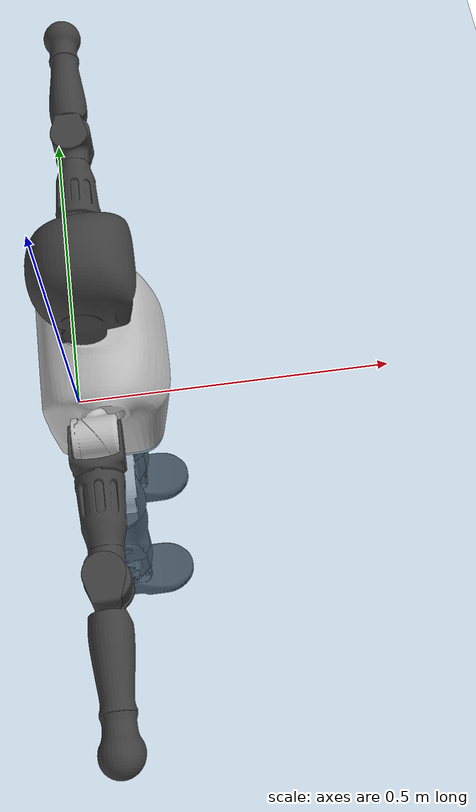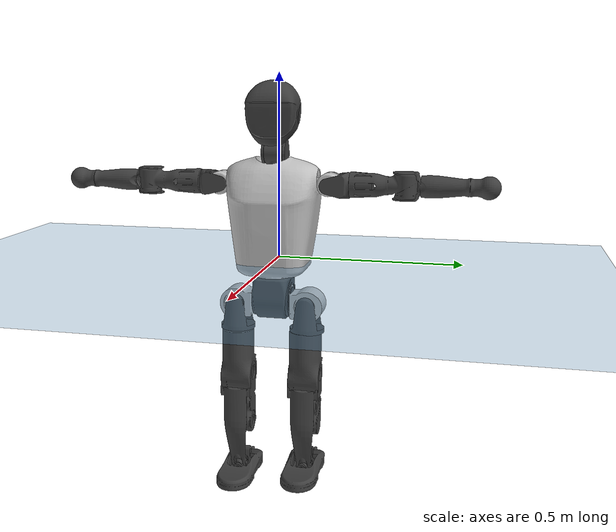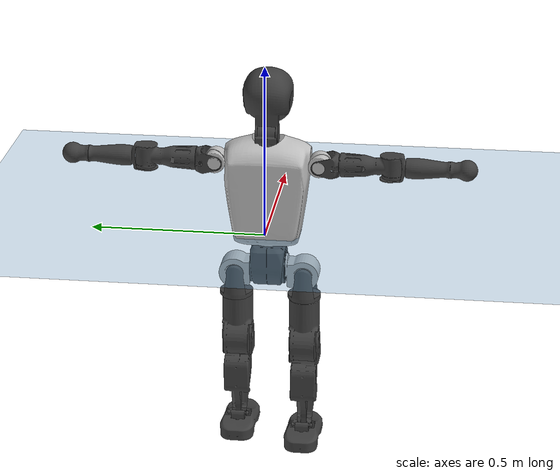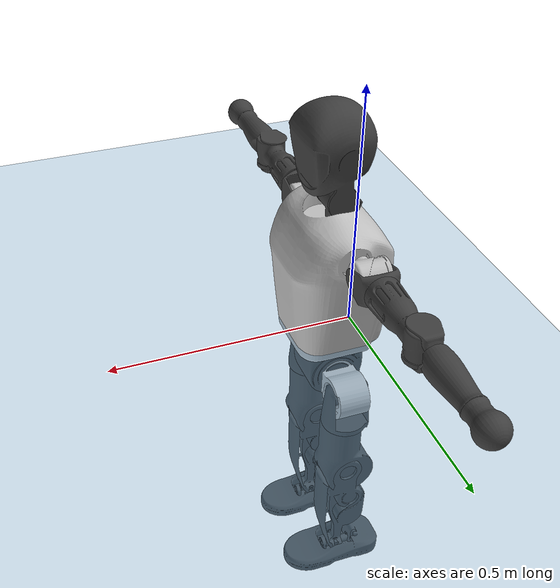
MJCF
<mujoco model="T1">
  <compiler angle="radian" assetdir="assets" balanceinertia="true" inertiafromgeom="false"/>

  <option timestep="0.005" density="1.2" viscosity="2e-05"/>

  <size nkey="1"/>

  <visual>
    <quality shadowsize="8192"/>
    <map shadowclip="0.5"/>
  </visual>

  <default>
    <default class="/">
      <joint armature="0.01" damping="0.01" frictionloss="0.1"/>
      <geom contype="0" conaffinity="0" group="1" solref="-1000 -80"/>
      <site size="0.01 0.005 0.005" group="5"/>
      <general forcelimited="true" biastype="affine" gainprm="25" biasprm="0 -25 -0.6"/>
      <default class="t1">
        <geom rgba="0.25 0.25 0.25 1"/>
        <default class="visual">
          <geom type="mesh" group="2"/>
        </default>
        <default class="collision">
          <geom group="3"/>
        </default>
        <default class="foot">
          <geom size="0.1115 0.05 0.015" type="box" condim="6" group="4" priority="1" solimp="0.015 1 0.015"/>
        </default>
        <default class="reward_collision_sphere">
          <geom group="5" rgba="1 0 0 1"/>
        </default>
      </default>
    </default>
  </default>

  <asset>
    <texture type="skybox" colorspace="auto" name="//unnamed_texture_0" builtin="gradient" rgb1="0.95 0.95 0.95" rgb2="0.95 0.95 0.95" width="100" height="600"/>
    <texture type="2d" colorspace="auto" name="texplane" builtin="checker" rgb1="0.345 0.575 0.748" rgb2="0.345 0.575 0.748" markrgb="1 1 1" width="512" height="512"/>
    <material name="MatPlane" class="/" texture="texplane" texuniform="true" texrepeat="2 2" specular="0.9"/>
    <mesh name="Trunk" class="/" file="Trunk.stl"/>
    <mesh name="H1" class="/" file="H1.stl"/>
    <mesh name="H2" class="/" file="H2.stl"/>
    <mesh name="AL1" class="/" file="AL1.stl"/>
    <mesh name="AL2" class="/" file="AL2.stl"/>
    <mesh name="AL3" class="/" file="AL3.stl"/>
    <mesh name="left_hand_link" class="/" file="left_hand_link.stl"/>
    <mesh name="AR1" class="/" file="AR1.stl"/>
    <mesh name="AR2" class="/" file="AR2.stl"/>
    <mesh name="AR3" class="/" file="AR3.stl"/>
    <mesh name="right_hand_link" class="/" file="right_hand_link.stl"/>
    <mesh name="Waist" class="/" file="Waist.stl"/>
    <mesh name="Hip_Pitch_Left" class="/" file="Hip_Pitch_Left.stl"/>
    <mesh name="Hip_Roll_Left" class="/" file="Hip_Roll_Left.stl"/>
    <mesh name="Hip_Yaw_Left" class="/" file="Hip_Yaw_Left.stl"/>
    <mesh name="Shank_Left" class="/" file="Shank_Left.stl"/>
    <mesh name="Ankle_Cross_Left" class="/" file="Ankle_Cross_Left.stl"/>
    <mesh name="left_foot_link" class="/" file="left_foot_link.stl"/>
    <mesh name="Hip_Pitch_Right" class="/" file="Hip_Pitch_Right.stl"/>
    <mesh name="Hip_Roll_Right" class="/" file="Hip_Roll_Right.stl"/>
    <mesh name="Hip_Yaw_Right" class="/" file="Hip_Yaw_Right.stl"/>
    <mesh name="Shank_Right" class="/" file="Shank_Right.stl"/>
    <mesh name="Ankle_Cross_Right" class="/" file="Ankle_Cross_Right.stl"/>
    <mesh name="right_foot_link" class="/" file="right_foot_link.stl"/>
  </asset>

  <worldbody>
    <geom name="floor" class="/" size="100 100 0.125" type="plane" group="0" material="MatPlane"/>
    <light name="toplight_shadow" class="/" pos="0 0 5" dir="0.0990148 0.0990148 -0.990148" type="directional" ambient="0.04 0.04 0.04" diffuse="0.55 0.55 0.55" specular="0.12 0.12 0.12"/>
    <light name="toplight_fill" class="/" pos="0 0 5" dir="0.0990148 0.0990148 -0.990148" type="directional" castshadow="false" ambient="0.04 0.04 0.04" diffuse="0.3 0.3 0.3" specular="0.08 0.08 0.08"/>
    <body name="trunk" childclass="t1" pos="-0.00190203 -0.00242171 0.002791" quat="0.999999 0.000201884 -0.000569693 0.000964154">
      <inertial pos="0.0365407 5.10975e-05 0.101813" quat="0.999946 0.00162593 -0.0101552 0.00178754" mass="7.34521" diaginertia="0.0134695 0.0560083 0.0448687"/>
      <joint name="//unnamed_joint_0" type="free" armature="0" damping="0" frictionloss="0"/>
      <geom name="//unnamed_geom_1" class="visual" rgba="0.76 0.76 0.76 1" mesh="Trunk"/>
      <geom name="//unnamed_geom_2" class="collision" size="0.0642317 0.0856423 0.128463" pos="0.0405911 0 0.114024" type="box"/>
      <geom name="//unnamed_geom_3" class="reward_collision_sphere" size="0.0984886" pos="0.0405911 0 0.0950201"/>
      <geom name="//unnamed_geom_4" class="reward_collision_sphere" size="0.0128463" pos="0.0405911 0.0801166 0"/>
      <geom name="//unnamed_geom_5" class="reward_collision_sphere" size="0.0128463" pos="0.0405911 -0.0801166 0"/>
      <geom name="//unnamed_geom_6" class="reward_collision_sphere" size="0.0128463" pos="0.0405911 0.100853 0.171036"/>
      <geom name="//unnamed_geom_7" class="reward_collision_sphere" size="0.0128463" pos="0.0405911 -0.100853 0.171036"/>
      <site name="imu" pos="0.0139551 -0.00431137 0.00338301" size="0.00856423"/>
      <camera name="track" pos="0 -1.8851 0" quat="0.707107 0.707107 0 0" mode="trackcom"/>
      <camera name="ego_camera" pos="0.0825353 0 0.399084" quat="-0.5 -0.5 0.5 0.5"/>
      <body name="H1" pos="0.0440418 0.0021138 0.227792" quat="1 -3.84431e-05 -7.92215e-05 4.45967e-05">
        <inertial pos="-0.00365909 0.000327497 0.0573299" quat="0.763206 -0.00824178 0.00155479 0.6461" mass="0.270758" diaginertia="3.27432e-05 0.000166456 0.000112047"/>
        <joint name="AAHead_yaw" pos="0 0 0" axis="1.12834e-06 3.86419e-05 1" stiffness="0.0025109" range="-1.61262 1.51695" armature="0.00733342" damping="0.00877023" frictionloss="0.0899774"/>
        <geom name="//unnamed_geom_8" class="visual" mesh="H1"/>
        <body name="H2" pos="0.000696156 -0.000149713 0.0613723" quat="1 -0.00024005 7.93332e-05 3.66494e-05">
          <inertial pos="0.0046876 0.00158132 0.0939746" quat="0.988131 0.110376 -0.0800458 -0.0707527" mass="0.389149" diaginertia="0.000271045 0.00142218 0.00132562"/>
          <joint name="Head_pitch" pos="0 0 0" axis="0.00119103 -0.999995 0.00294954" range="-1.19915 0.329162" armature="0.0076941" damping="0.0110076" frictionloss="0.0825737"/>
          <geom name="//unnamed_geom_9" class="visual" mesh="H2"/>
          <geom name="//unnamed_geom_10" class="collision" size="0.0685138" pos="0.00676519 0 0.104522"/>
          <geom name="//unnamed_geom_11" class="reward_collision_sphere" size="0.077078" pos="0.0135304 0 0.0950201"/>
        </body>
      </body>
      <body name="AL1" pos="0.0400763 0.101546 0.207232" quat="1 -0.000156381 0.000422766 0.000153004">
        <inertial pos="-0.00345649 0.0419049 -1.12516e-05" quat="0.508421 0.498025 -0.500059 0.493377" mass="0.335743" diaginertia="0.000194717 0.000997494 0.000235002"/>
        <joint name="Left_Shoulder_Pitch" pos="0 0 0" axis="0.0115641 0.99988 -0.0102912" stiffness="0.00389571" range="-3.29522 1.26239" armature="0.00877066" damping="0.00986601" frictionloss="0.0880702"/>
        <geom name="//unnamed_geom_12" class="visual" rgba="0.76 0.76 0.76 1" mesh="AL1"/>
        <body name="AL2" pos="0.000874079 0.0453872 -0.00234699" quat="1 -1.00399e-05 1.53339e-06 -1.73277e-05">
          <inertial pos="0.00145821 0.0328854 0.000271273" quat="0.487731 0.512457 -0.488145 0.511098" mass="0.0986087" diaginertia="5.58188e-05 0.000254207 0.00013633"/>
          <joint name="Left_Shoulder_Roll" pos="0 0 0" axis="-0.999993 -0.000104134 0.00365068" range="-1.61851 1.79558" armature="0.00874919" damping="0.0105266" frictionloss="0.0897167"/>
          <geom name="//unnamed_geom_13" class="visual" mesh="AL2"/>
          <body name="AL3" pos="0.00315645 0.0566941 0.00303769" quat="0.999999 0.000921156 -0.00011107 -0.00111325">
            <inertial pos="-0.00190779 0.0793889 -0.000346753" quat="0.704816 0.70939 -0.000728261 0.000527229" mass="0.665942" diaginertia="0.00188833 0.00931562 0.000476676"/>
            <joint name="Left_Elbow_Pitch" pos="0 0 0" axis="0.00449527 -0.99999 2.24331e-05" range="-2.28065 2.27446" armature="0.00749036" damping="0.0155574" frictionloss="0.0868916"/>
            <geom name="//unnamed_geom_14" class="visual" mesh="AL3"/>
            <geom name="//unnamed_geom_15" class="collision" size="0.0256927 0.0642317" pos="0 0.0471274 0" quat="0.707105 0.707108 0 0" type="cylinder"/>
            <geom name="//unnamed_geom_16" class="reward_collision_sphere" size="0.0308312"/>
            <body name="left_hand_link" pos="-0.00192733 0.139528 -0.000637617" quat="0.999999 0.000410085 0.00097534 5.96913e-05">
              <inertial pos="0.000108026 0.100668 0.0033448" quat="0.704603 0.709492 -0.0123311 0.00170831" mass="0.19822" diaginertia="0.00116239 0.00595799 0.00015746"/>
              <joint name="Left_Elbow_Yaw" pos="0 0 0" axis="0.000291506 4.75212e-05 1" stiffness="0.0107256" range="-2.43124 -0.0343832" armature="0.00901731" damping="0.00971915" frictionloss="0.0842593"/>
              <geom name="//unnamed_geom_17" class="visual" mesh="left_hand_link"/>
              <geom name="//unnamed_geom_18" class="collision" size="0.0256927 0.074937" pos="0 0.122531 0" quat="0.707105 0.707108 0 0" type="cylinder"/>
              <geom name="//unnamed_geom_19" class="reward_collision_sphere" size="0.0428211"/>
              <geom name="//unnamed_geom_20" class="reward_collision_sphere" size="0.0299748" pos="0 0.10368 0"/>
              <geom name="//unnamed_geom_21" class="reward_collision_sphere" size="0.0299748" pos="0 0.202648 0"/>
            </body>
          </body>
        </body>
      </body>
      <body name="AR1" pos="0.0411002 -0.101079 0.205793" quat="1 -5.98835e-07 0.000390403 2.5061e-06">
        <inertial pos="-0.00148714 -0.0449534 0.00159763" quat="0.501941 0.495158 -0.506579 0.496237" mass="0.320955" diaginertia="0.000187828 0.000908757 0.00021865"/>
        <joint name="Right_Shoulder_Pitch" pos="0 0 0" axis="0.00806554 -0.999965 -0.00209866" stiffness="0.00847783" range="-1.17144 3.33094" armature="0.00922227" damping="0.00687815" frictionloss="0.0972609"/>
        <geom name="//unnamed_geom_22" class="visual" rgba="0.76 0.76 0.76 1" mesh="AR1"/>
        <body name="AR2" pos="-0.000625726 -0.046046 -0.00124687" quat="0.999999 -0.00078672 0.000207553 0.000940015">
          <inertial pos="-0.000245596 -0.0356739 -0.00228872" quat="0.506554 0.496486 -0.504749 0.49207" mass="0.101393" diaginertia="5.78744e-05 0.000262565 0.000136706"/>
          <joint name="Right_Shoulder_Roll" pos="0 0 0" axis="-0.999793 -0.0202714 0.00195233" range="-1.73486 1.58555" armature="0.00776786" damping="0.00569515" frictionloss="0.088821"/>
          <geom name="//unnamed_geom_23" class="visual" mesh="AR2"/>
          <body name="AR3" pos="0.000490649 -0.0595876 0.00181155" quat="0.999999 0.000996967 0.000503895 0.000626874">
            <inertial pos="0.000930067 -0.0816159 0.00237402" quat="0.70751 0.706699 0.00141288 -0.00206465" mass="0.617888" diaginertia="0.00171691 0.00914952 0.000454005"/>
            <joint name="Right_Elbow_Pitch" pos="0 0 0" axis="0.000383396 1 -0.000325489" range="-2.27033 2.26389" armature="0.00855053" damping="0.0125913" frictionloss="0.0900249"/>
            <geom name="//unnamed_geom_24" class="visual" mesh="AR3"/>
            <geom name="//unnamed_geom_25" class="collision" size="0.0256927 0.0642317" pos="0 -0.0471274 0" quat="0.707105 0.707108 0 0" type="cylinder"/>
            <geom name="//unnamed_geom_26" class="reward_collision_sphere" size="0.0308312"/>
            <body name="right_hand_link" pos="-0.0033442 -0.139424 -0.000793645" quat="1 6.9088e-05 -4.44574e-05 8.53103e-06">
              <inertial pos="-0.000245275 -0.10207 0.00107475" quat="0.706524 0.707688 -0.000740289 0.000889777" mass="0.2026" diaginertia="0.00117628 0.00615603 0.000164968"/>
              <joint name="Right_Elbow_Yaw" pos="0 0 0" axis="0.00570227 0.00139313 0.999983" stiffness="0.00267815" range="-0.0212328 2.44325" armature="0.00754158" damping="0.00771358" frictionloss="0.097178"/>
              <geom name="//unnamed_geom_27" class="visual" mesh="right_hand_link"/>
              <geom name="//unnamed_geom_28" class="collision" size="0.0256927 0.074937" pos="0 -0.122531 0" quat="0.707105 0.707108 0 0" type="cylinder"/>
              <geom name="//unnamed_geom_29" class="reward_collision_sphere" size="0.0428211"/>
              <geom name="//unnamed_geom_30" class="reward_collision_sphere" size="0.0299748" pos="0 -0.10368 0"/>
              <geom name="//unnamed_geom_31" class="reward_collision_sphere" size="0.0299748" pos="0 -0.202648 0"/>
            </body>
          </body>
        </body>
      </body>
      <body name="Waist" pos="0.0416993 -0.00349723 -0.107734" quat="0.999999 -0.000108036 0.000320298 -0.0010667">
        <inertial pos="-0.000588703 0.00226843 0.00418624" quat="0.98396 0.00834358 -0.178143 0.00416754" mass="1.55853" diaginertia="0.000754718 0.00384078 0.00361077"/>
        <joint name="Waist" pos="0 0 0" axis="-0.00814273 -0.010852 0.999908" stiffness="0.00862184" range="-1.57179 1.5772" armature="0.00863068" damping="0.0140022" frictionloss="0.0877531"/>
        <geom name="//unnamed_geom_32" class="visual" mesh="Waist"/>
        <body name="Hip_Pitch_Left" pos="-0.00129826 0.0967429 0.00117164" quat="1 -0.000252572 -0.000293738 0.000203289">
          <inertial pos="0.00258568 -0.00827575 -0.0172238" quat="0.973817 0.22614 0.0229842 -0.00367493" mass="0.654551" diaginertia="0.000257382 0.00116095 0.000992212"/>
          <joint name="Left_Hip_Pitch" pos="0 0 0" axis="-0.00547952 0.999939 0.00955231" stiffness="0.0121433" range="-1.76211 1.57305" armature="0.009712" damping="0.00983583" frictionloss="0.0820909"/>
          <geom name="//unnamed_geom_33" class="visual" rgba="0.76 0.76 0.76 1" mesh="Hip_Pitch_Left"/>
          <body name="Hip_Roll_Left" pos="-0.000435806 -0.00291275 -0.0180552" quat="1 -7.76331e-05 -0.000169899 0.000105854">
            <inertial pos="0.00100203 -0.00136317 -0.0533772" quat="0.706815 -0.00607118 -0.00680069 0.70734" mass="0.231745" diaginertia="0.000231551 0.0010676 0.000390406"/>
            <joint name="Left_Hip_Roll" pos="0 0 0" axis="-0.999943 -0.00865401 0.0063127" range="-1.56522 0.252829" armature="0.00864405" damping="0.0071327" frictionloss="0.0973976"/>
            <geom name="//unnamed_geom_34" class="visual" mesh="Hip_Roll_Left"/>
            <geom name="//unnamed_geom_35" class="reward_collision_sphere" size="0.0471032"/>
            <body name="Hip_Yaw_Left" pos="0.00382799 -0.00326205 -0.0750309" quat="0.999999 -0.000476534 0.000883639 -0.000944964">
              <inertial pos="-0.00486146 0.000154629 -0.0877352" quat="0.701545 -0.0325429 -0.0326855 0.711131" mass="1.35692" diaginertia="0.00353208 0.0185928 0.00197136"/>
              <joint name="Left_Hip_Yaw" pos="0 0 0" axis="0.000173099 0.00345668 -0.999994" range="-1.03163 1.02216" armature="0.00829515" damping="0.0125156" frictionloss="0.0879066"/>
              <geom name="//unnamed_geom_36" class="visual" mesh="Hip_Yaw_Left"/>
              <geom name="//unnamed_geom_37" class="collision" size="0.0428211 0.0685138" type="cylinder"/>
              <body name="Shank_Left" pos="-0.00612498 -0.00101982 -0.12453" quat="1 8.67991e-06 -0.00021682 -0.000272268">
                <inertial pos="-0.00675086 0.000498506 -0.118807" quat="0.996701 0.00819631 -0.0236713 0.0772013" mass="1.08729" diaginertia="0.00509639 0.0252469 0.00139272"/>
                <joint name="Left_Knee_Pitch" pos="0 0 0" axis="0.00689979 0.999976 -0.0011264" stiffness="0.000661283" range="-0.00258636 2.28367" armature="0.00992978" damping="0" frictionloss="0.0894872"/>
                <geom name="//unnamed_geom_38" class="visual" mesh="Shank_Left"/>
                <geom name="//unnamed_geom_39" class="collision" size="0.0428211 0.0642317" pos="0 0 -0.114024" type="cylinder"/>
                <geom name="//unnamed_geom_40" class="reward_collision_sphere" size="0.0556675"/>
                <body name="Ankle_Cross_Left" pos="0.00226024 -0.000677081 -0.266674" quat="0.999999 -8.7894e-05 -0.00109698 -0.00066004">
                  <inertial pos="-0.00347219 -0.000237177 -0.00498291" quat="0.444525 0.550174 0.549355 0.444876" mass="0.0456406" diaginertia="3.9947e-06 1.91931e-05 9.05531e-06"/>
                  <joint name="Left_Ankle_Pitch" pos="0 0 0" axis="-0.0013807 0.999998 0.00158727" range="-0.871388 0.354479" armature="0.00910497" damping="0.0204144" frictionloss="0.0820497"/>
                  <geom name="//unnamed_geom_41" class="visual" mesh="Ankle_Cross_Left"/>
                  <body name="left_foot_link" pos="-0.00242921 -0.00318208 -0.00924405" quat="1 0.000354189 -9.7091e-05 -0.000318004">
                    <inertial pos="-0.00294735 -0.00242678 -0.00793239" quat="-0.00891838 0.616589 0.00208026 0.787232" mass="0.435732" diaginertia="0.000377131 0.00175496 0.00174912"/>
                    <joint name="Left_Ankle_Roll" pos="0 0 0" axis="-0.999982 -0.00589698 -0.00077839" range="-0.419525 0.496886" armature="0.008722" damping="0" frictionloss="0.0841835"/>
                    <geom name="//unnamed_geom_42" class="visual" mesh="left_foot_link"/>
                    <geom name="left_foot" class="foot" size="0.108046 0.0390635 0.0135612" pos="0.00676519 0 -0.014253"/>
                    <geom name="//unnamed_geom_44" class="reward_collision_sphere" size="0.044534" pos="0.00676519 0 -0.014253"/>
                    <geom name="//unnamed_geom_45" class="reward_collision_sphere" size="0.0256927" pos="0.0642693 -0.0216786 -0.014253"/>
                    <geom name="//unnamed_geom_46" class="reward_collision_sphere" size="0.0256927" pos="-0.0473563 -0.0216786 -0.014253"/>
                    <site name="left_foot" class="foot" pos="0.00676519 0 -0.014253" size="0.00856423"/>
                  </body>
                </body>
              </body>
            </body>
          </body>
        </body>
        <body name="Hip_Pitch_Right" pos="-0.00253977 -0.102619 0.000656" quat="1 -0.000435691 8.28939e-06 -0.000628407">
          <inertial pos="-0.00154073 0.00482282 -0.0182636" quat="0.973846 -0.226889 0.0120053 -0.00128985" mass="0.64136" diaginertia="0.000265622 0.00112843 0.000973645"/>
          <joint name="Right_Hip_Pitch" pos="0 0 0" axis="-0.000146636 -1 -0.000150375" range="-1.57852 1.74062" armature="0.00776094" damping="0" frictionloss="0.0941106"/>
          <geom name="//unnamed_geom_47" class="visual" rgba="0.76 0.76 0.76 1" mesh="Hip_Pitch_Right"/>
          <body name="Hip_Roll_Right" pos="-0.00320648 -0.00166399 -0.0185731" quat="0.999999 0.00131534 -0.000158203 -0.000679207">
            <inertial pos="-0.00183237 0.00110551 -0.0480857" quat="0.710949 0.00121263 0.00234318 0.703239" mass="0.250244" diaginertia="0.000254583 0.0011241 0.000405554"/>
            <joint name="Right_Hip_Roll" pos="0 0 0" axis="-0.999999 0.000813285 0.00123133" stiffness="0.00481872" range="-0.189238 1.55984" armature="0.00873634" damping="0.0120644" frictionloss="0.0977632"/>
            <geom name="//unnamed_geom_48" class="visual" mesh="Hip_Roll_Right"/>
            <geom name="//unnamed_geom_49" class="reward_collision_sphere" size="0.0471032"/>
            <body name="Hip_Yaw_Right" pos="-0.000500933 -0.000928179 -0.0821352" quat="1 4.74435e-05 -4.25026e-05 0.000111432">
              <inertial pos="-0.00391316 -0.000966231 -0.0821365" quat="0.713324 -0.0323342 -0.0337943 0.699272" mass="1.39613" diaginertia="0.00376766 0.0189342 0.00206698"/>
              <joint name="Right_Hip_Yaw" pos="0 0 0" axis="-0.00655151 0.000544498 -0.999978" range="-1.00482 0.996211" armature="0.00830087" damping="0.0141405" frictionloss="0.0792303"/>
              <geom name="//unnamed_geom_50" class="visual" mesh="Hip_Yaw_Right"/>
              <geom name="//unnamed_geom_51" class="collision" size="0.0428211 0.0685138" type="cylinder"/>
              <body name="Shank_Right" pos="-0.0111034 -0.00201219 -0.129743" quat="1 -0.000662656 0.00027323 -0.000350093">
                <inertial pos="-0.00389147 -0.00275737 -0.11714" quat="0.998994 -0.0138105 -0.0269815 -0.0330512" mass="1.16826" diaginertia="0.00491917 0.0262103 0.00149299"/>
                <joint name="Right_Knee_Pitch" pos="0 0 0" axis="-0.00531152 -0.999985 -0.00158404" range="-2.38253 -0.00427884" armature="0.0083324" damping="0.00705597" frictionloss="0.0889022"/>
                <geom name="//unnamed_geom_52" class="visual" mesh="Shank_Right"/>
                <geom name="//unnamed_geom_53" class="collision" size="0.0428211 0.0642317" pos="0 0 -0.114024" type="cylinder"/>
                <geom name="//unnamed_geom_54" class="reward_collision_sphere" size="0.0556675"/>
                <body name="Ankle_Cross_Right" pos="-0.00112864 -9.11651e-05 -0.269881" quat="1 -1.10903e-05 -5.89211e-06 2.06428e-05">
                  <inertial pos="-0.00144495 0.00301581 -0.00765556" quat="0.443921 0.55118 0.550375 0.44297" mass="0.043862" diaginertia="4.18323e-06 1.82507e-05 8.94328e-06"/>
                  <joint name="Right_Ankle_Pitch" pos="0 0 0" axis="-0.00660048 -0.999938 -0.00898912" range="-0.294182 0.813749" armature="0.00851101" damping="0.0201641" frictionloss="0.0878802"/>
                  <geom name="//unnamed_geom_55" class="visual" mesh="Ankle_Cross_Right"/>
                  <body name="right_foot_link" pos="0.00254548 0.00159482 -0.0156897" quat="1 -0.000161435 8.78091e-06 -0.000118642">
                    <inertial pos="-7.6548e-05 0.00242182 -0.00992962" quat="0.00502556 0.615806 -0.00928905 0.787827" mass="0.412965" diaginertia="0.000373237 0.00176479 0.00164082"/>
                    <joint name="Right_Ankle_Roll" pos="0 0 0" axis="-0.999983 -0.000405498 0.00577638" range="-0.492043 0.477165" armature="0.00828605" damping="0.00568186" frictionloss="0.0977222"/>
                    <geom name="//unnamed_geom_56" class="visual" mesh="right_foot_link"/>
                    <geom name="right_foot" class="foot" size="0.0989716 0.0385079 0.0138956" pos="0.00676519 0 -0.014253"/>
                    <geom name="//unnamed_geom_58" class="reward_collision_sphere" size="0.0342569"/>
                    <geom name="//unnamed_geom_59" class="reward_collision_sphere" size="0.0256927" pos="0.00676519 0 -0.014253"/>
                    <geom name="//unnamed_geom_60" class="reward_collision_sphere" size="0.0256927" pos="0.0642693 0.0216786 -0.014253"/>
                    <geom name="//unnamed_geom_61" class="reward_collision_sphere" size="0.0256927" pos="-0.0473563 0.0216786 -0.014253"/>
                    <site name="right_foot" class="foot" pos="0.00676519 0 -0.014253" size="0.00856423"/>
                  </body>
                </body>
              </body>
            </body>
          </body>
        </body>
      </body>
    </body>
  </worldbody>

  <contact>
    <pair class="/" geom1="floor" geom2="left_foot" name="//unnamed_contact_0"/>
    <pair class="/" geom1="floor" geom2="right_foot" name="//unnamed_contact_1"/>
  </contact>

  <actuator>
    <general name="AAHead_yaw" class="/" joint="AAHead_yaw" forcerange="-5.87963 5.87963" gainprm="20.1042" biasprm="0 -20.1042 -0.538679"/>
    <general name="Head_pitch" class="/" joint="Head_pitch" forcerange="-5.91239 5.91239" gainprm="20.1042" biasprm="0 -20.1042 -0.538679"/>
    <general name="Left_Shoulder_Pitch" class="/" joint="Left_Shoulder_Pitch" forcerange="-14.7639 14.7639" gainprm="20.1042" biasprm="0 -20.1042 -0.538679"/>
    <general name="Left_Shoulder_Roll" class="/" joint="Left_Shoulder_Roll" forcerange="-14.0345 14.0345" gainprm="20.1042" biasprm="0 -20.1042 -0.538679"/>
    <general name="Left_Elbow_Pitch" class="/" joint="Left_Elbow_Pitch" forcerange="-17.1154 17.1154" gainprm="20.1042" biasprm="0 -20.1042 -0.538679"/>
    <general name="Left_Elbow_Yaw" class="/" joint="Left_Elbow_Yaw" forcerange="-15.3483 15.3483" gainprm="20.1042" biasprm="0 -20.1042 -0.538679"/>
    <general name="Right_Shoulder_Pitch" class="/" joint="Right_Shoulder_Pitch" forcerange="-15.5536 15.5536" gainprm="20.1042" biasprm="0 -20.1042 -0.538679"/>
    <general name="Right_Shoulder_Roll" class="/" joint="Right_Shoulder_Roll" forcerange="-17.0437 17.0437" gainprm="20.1042" biasprm="0 -20.1042 -0.538679"/>
    <general name="Right_Elbow_Pitch" class="/" joint="Right_Elbow_Pitch" forcerange="-15.3207 15.3207" gainprm="20.1042" biasprm="0 -20.1042 -0.538679"/>
    <general name="Right_Elbow_Yaw" class="/" joint="Right_Elbow_Yaw" forcerange="-14.891 14.891" gainprm="20.1042" biasprm="0 -20.1042 -0.538679"/>
    <general name="Waist" class="/" joint="Waist" forcerange="-23.3011 23.3011" gainprm="20.1042" biasprm="0 -20.1042 -0.538679"/>
    <general name="Left_Hip_Pitch" class="/" joint="Left_Hip_Pitch" forcerange="-37.0848 37.0848" gainprm="20.1042" biasprm="0 -20.1042 -0.538679"/>
    <general name="Left_Hip_Roll" class="/" joint="Left_Hip_Roll" forcerange="-27.4328 27.4328" gainprm="20.1042" biasprm="0 -20.1042 -0.538679"/>
    <general name="Left_Hip_Yaw" class="/" joint="Left_Hip_Yaw" forcerange="-23.099 23.099" gainprm="20.1042" biasprm="0 -20.1042 -0.538679"/>
    <general name="Left_Knee_Pitch" class="/" joint="Left_Knee_Pitch" forcerange="-50.7889 50.7889" gainprm="20.1042" biasprm="0 -20.1042 -0.538679"/>
    <general name="Left_Ankle_Pitch" class="/" joint="Left_Ankle_Pitch" forcerange="-17.1816 17.1816" gainprm="20.1042" biasprm="0 -20.1042 -0.538679"/>
    <general name="Left_Ankle_Roll" class="/" joint="Left_Ankle_Roll" forcerange="-13.498 13.498" gainprm="20.1042" biasprm="0 -20.1042 -0.538679"/>
    <general name="Right_Hip_Pitch" class="/" joint="Right_Hip_Pitch" forcerange="-41.8179 41.8179" gainprm="20.1042" biasprm="0 -20.1042 -0.538679"/>
    <general name="Right_Hip_Roll" class="/" joint="Right_Hip_Roll" forcerange="-26.8894 26.8894" gainprm="20.1042" biasprm="0 -20.1042 -0.538679"/>
    <general name="Right_Hip_Yaw" class="/" joint="Right_Hip_Yaw" forcerange="-25.2531 25.2531" gainprm="20.1042" biasprm="0 -20.1042 -0.538679"/>
    <general name="Right_Knee_Pitch" class="/" joint="Right_Knee_Pitch" forcerange="-56.2051 56.2051" gainprm="20.1042" biasprm="0 -20.1042 -0.538679"/>
    <general name="Right_Ankle_Pitch" class="/" joint="Right_Ankle_Pitch" forcerange="-16.2306 16.2306" gainprm="20.1042" biasprm="0 -20.1042 -0.538679"/>
    <general name="Right_Ankle_Roll" class="/" joint="Right_Ankle_Roll" forcerange="-14.1318 14.1318" gainprm="20.1042" biasprm="0 -20.1042 -0.538679"/>
  </actuator>

  <sensor>
    <gyro site="imu" name="imu_angular_velocity"/>
    <velocimeter site="imu" name="imu_linear_velocity"/>
    <framelinvel objtype="site" objname="left_foot" name="left_foot_global_linear_velocity"/>
    <framelinvel objtype="site" objname="right_foot" name="right_foot_global_linear_velocity"/>
  </sensor>

  <keyframe>
    <key name="home" qpos="0 0 0.6385 1 0 0 0 0 0 0 1.4 0 -0.4 0 -1.4 0 0.4 0 -0.4 0 0 0.8 -0.4 0 0.4 0 0 -0.8 0.4 0"/>
  </keyframe>
</mujoco>
